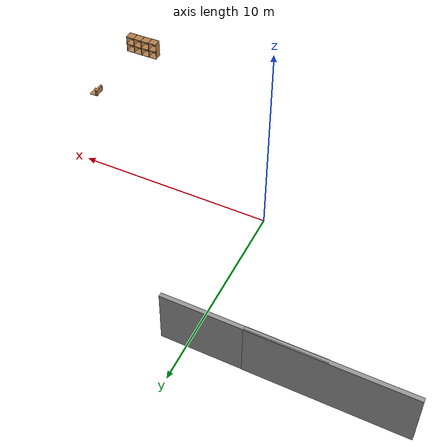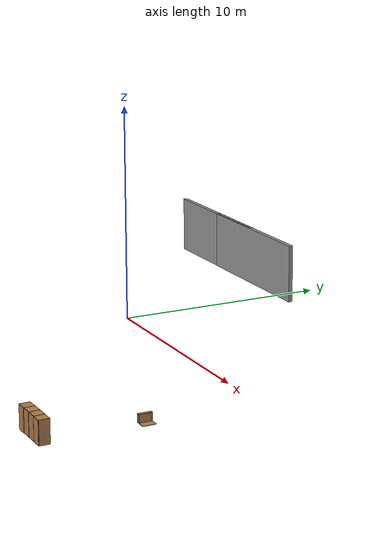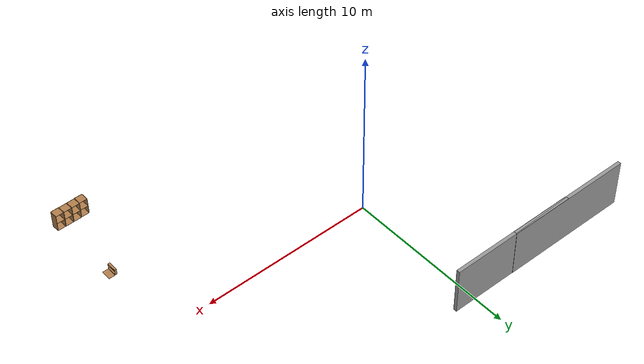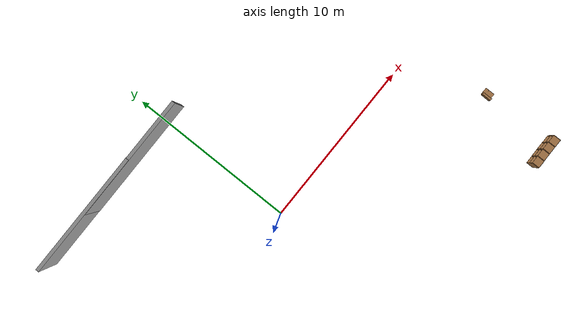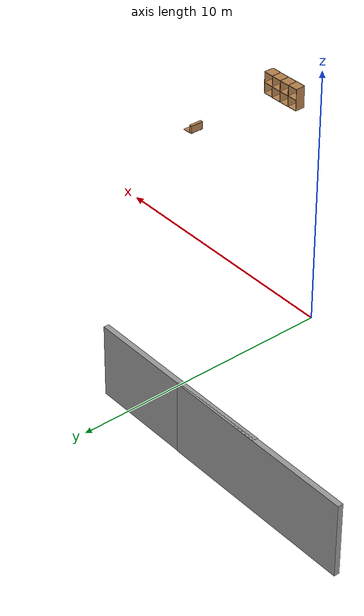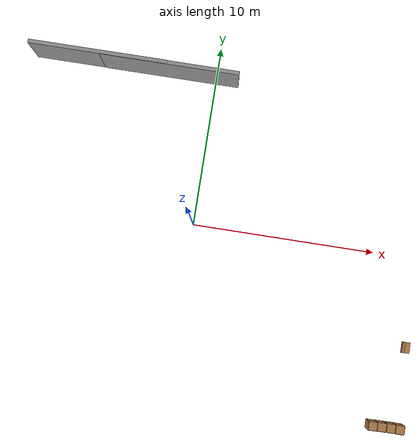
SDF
<sdf version="1.6">
 <world name="factory">
  <model name="deletion_wall">
   <static>1</static>
   <link name="sensing_link">
    <gravity>0</gravity>
    <sensor name="object_disposal_contact" type="contact">
     <update_rate>10</update_rate>
     <contact><collision>collision</collision><topic>__default_topic__</topic></contact>
    </sensor>
    <collision name="collision"><geometry><box><size>0.1 1 1</size></box></geometry></collision>
    <visual name="visual">
     <geometry><box><size>0.1 1 1</size></box></geometry>
     <cast_shadows>0</cast_shadows>
     <transparency>100</transparency>
    </visual>
   </link>
   <plugin name="object_disposal_plugin" filename="libObjectDisposalPlugin.so">
    <contact_sensor_name>object_disposal_contact</contact_sensor_name>
    <contact_side_normal>1 0 0</contact_side_normal>
    <disposal_pose>30 30 0 0 0 0</disposal_pose>
    <update_rate>5</update_rate>
   </plugin>
   <pose>0.199032 -1.08981 0 0 -0 0</pose>
  </model>
  <model name="grey_wall">
   <static>1</static>
   <link name="link">
    <pose>0 0 1.4 0 -0 0</pose>
    <collision name="collision"><geometry><box><size>7.5 0.2 2.8</size></box></geometry></collision>
    <visual name="visual">
     <cast_shadows>0</cast_shadows>
     <geometry><box><size>7.5 0.2 2.8</size></box></geometry>
     <material>
      <script>
       <uri>model://grey_wall/materials/scripts</uri>
       <uri>model://grey_wall/materials/textures</uri>
       <name>vrc/grey_wall</name>
      </script>
     </material>
    </visual>
   </link>
   <pose>-6.34942 8.1136 0 0 -0 0</pose>
  </model>
  <model name="grey_wall_clone">
   <static>1</static>
   <link name="link">
    <pose>0 0 1.4 0 -0 0</pose>
    <collision name="collision"><geometry><box><size>7.5 0.2 2.8</size></box></geometry></collision>
    <visual name="visual">
     <cast_shadows>0</cast_shadows>
     <geometry><box><size>7.5 0.2 2.8</size></box></geometry>
     <material>
      <script>
       <uri>model://grey_wall/materials/scripts</uri>
       <uri>model://grey_wall/materials/textures</uri>
       <name>vrc/grey_wall</name>
      </script>
     </material>
    </visual>
   </link>
   <pose>-2.50623 8.09985 0 0 -0 0</pose>
  </model>
  <model name="cabinet_clone">
   <static>1</static>
   <link name="cabinet_bottom_plate">
    <inertial>
     <pose>0 0 -1 0 -0 0</pose>
     <inertia><ixx>2.05</ixx><ixy>0</ixy><ixz>0</ixz><iyy>2.05</iyy><iyz>0</iyz><izz>2.05</izz></inertia>
     <mass>25</mass>
    </inertial>
    <collision name="cabinet_bottom_plate_geom">
     <pose>0 0 0.01 0 -0 0</pose>
     <geometry><box><size>0.45 0.45 0.02</size></box></geometry>
    </collision>
    <visual name="cabinet_bottom_plate_geom_visual">
     <pose>0 0 0.01 0 -0 0</pose>
     <geometry><box><size>0.45 0.45 0.02</size></box></geometry>
     <material>
      <script><uri>file://media/materials/scripts/gazebo.material</uri><name>Gazebo/Wood</name></script>
     </material>
    </visual>
    <collision name="cabinet_bottom_plate_geom_cabinet_back_plate">
     <pose>0.235 0 0.51 0 -0 0</pose>
     <geometry><box><size>0.02 0.45 1.02</size></box></geometry>
    </collision>
    <visual name="cabinet_bottom_plate_geom_cabinet_back_plate_visual">
     <pose>0.235 0 0.51 0 -0 0</pose>
     <geometry><box><size>0.02 0.45 1.02</size></box></geometry>
     <material>
      <script><uri>file://media/materials/scripts/gazebo.material</uri><name>Gazebo/Wood</name></script>
     </material>
    </visual>
    <collision name="cabinet_bottom_plate_geom_cabinet_left_plate">
     <pose>0 0.235 0.51 0 -0 0</pose>
     <geometry><box><size>0.45 0.02 1.02</size></box></geometry>
    </collision>
    <visual name="cabinet_bottom_plate_geom_cabinet_left_plate_visual">
     <pose>0 0.235 0.51 0 -0 0</pose>
     <geometry><box><size>0.45 0.02 1.02</size></box></geometry>
     <material>
      <script><uri>file://media/materials/scripts/gazebo.material</uri><name>Gazebo/Wood</name></script>
     </material>
    </visual>
    <collision name="cabinet_bottom_plate_geom_cabinet_middle_plate">
     <pose>0 0 0.51 0 -0 0</pose>
     <geometry><box><size>0.45 0.45 0.02</size></box></geometry>
    </collision>
    <visual name="cabinet_bottom_plate_geom_cabinet_middle_plate_visual">
     <pose>0 0 0.51 0 -0 0</pose>
     <geometry><box><size>0.45 0.45 0.02</size></box></geometry>
     <material>
      <script><uri>file://media/materials/scripts/gazebo.material</uri><name>Gazebo/Wood</name></script>
     </material>
    </visual>
    <collision name="cabinet_bottom_plate_geom_cabinet_right_plate">
     <pose>0 -0.235 0.51 0 -0 0</pose>
     <geometry><box><size>0.45 0.02 1.02</size></box></geometry>
    </collision>
    <visual name="cabinet_bottom_plate_geom_cabinet_right_plate_visual">
     <pose>0 -0.235 0.51 0 -0 0</pose>
     <geometry><box><size>0.45 0.02 1.02</size></box></geometry>
     <material>
      <script><uri>file://media/materials/scripts/gazebo.material</uri><name>Gazebo/Wood</name></script>
     </material>
    </visual>
    <collision name="cabinet_bottom_plate_geom_cabinet_top_plate">
     <pose>0 0 1.01 0 -0 0</pose>
     <geometry><box><size>0.45 0.45 0.02</size></box></geometry>
    </collision>
    <visual name="cabinet_bottom_plate_geom_cabinet_top_plate_visual">
     <pose>0 0 1.01 0 -0 0</pose>
     <geometry><box><size>0.45 0.45 0.02</size></box></geometry>
     <material>
      <script><uri>file://media/materials/scripts/gazebo.material</uri><name>Gazebo/Wood</name></script>
     </material>
    </visual>
   </link>
   <pose>12.5585 -9.14446 0.037072 0 0 -1.55676</pose>
  </model>
  <model name="cabinet_clone_0">
   <static>1</static>
   <link name="cabinet_bottom_plate">
    <inertial>
     <pose>0 0 -1 0 -0 0</pose>
     <inertia><ixx>2.05</ixx><ixy>0</ixy><ixz>0</ixz><iyy>2.05</iyy><iyz>0</iyz><izz>2.05</izz></inertia>
     <mass>25</mass>
    </inertial>
    <collision name="cabinet_bottom_plate_geom">
     <pose>0 0 0.01 0 -0 0</pose>
     <geometry><box><size>0.45 0.45 0.02</size></box></geometry>
    </collision>
    <visual name="cabinet_bottom_plate_geom_visual">
     <pose>0 0 0.01 0 -0 0</pose>
     <geometry><box><size>0.45 0.45 0.02</size></box></geometry>
     <material>
      <script><uri>file://media/materials/scripts/gazebo.material</uri><name>Gazebo/Wood</name></script>
     </material>
    </visual>
    <collision name="cabinet_bottom_plate_geom_cabinet_back_plate">
     <pose>0.235 0 0.51 0 -0 0</pose>
     <geometry><box><size>0.02 0.45 1.02</size></box></geometry>
    </collision>
    <visual name="cabinet_bottom_plate_geom_cabinet_back_plate_visual">
     <pose>0.235 0 0.51 0 -0 0</pose>
     <geometry><box><size>0.02 0.45 1.02</size></box></geometry>
     <material>
      <script><uri>file://media/materials/scripts/gazebo.material</uri><name>Gazebo/Wood</name></script>
     </material>
    </visual>
    <collision name="cabinet_bottom_plate_geom_cabinet_left_plate">
     <pose>0 0.235 0.51 0 -0 0</pose>
     <geometry><box><size>0.45 0.02 1.02</size></box></geometry>
    </collision>
    <visual name="cabinet_bottom_plate_geom_cabinet_left_plate_visual">
     <pose>0 0.235 0.51 0 -0 0</pose>
     <geometry><box><size>0.45 0.02 1.02</size></box></geometry>
     <material>
      <script><uri>file://media/materials/scripts/gazebo.material</uri><name>Gazebo/Wood</name></script>
     </material>
    </visual>
    <collision name="cabinet_bottom_plate_geom_cabinet_middle_plate">
     <pose>0 0 0.51 0 -0 0</pose>
     <geometry><box><size>0.45 0.45 0.02</size></box></geometry>
    </collision>
    <visual name="cabinet_bottom_plate_geom_cabinet_middle_plate_visual">
     <pose>0 0 0.51 0 -0 0</pose>
     <geometry><box><size>0.45 0.45 0.02</size></box></geometry>
     <material>
      <script><uri>file://media/materials/scripts/gazebo.material</uri><name>Gazebo/Wood</name></script>
     </material>
    </visual>
    <collision name="cabinet_bottom_plate_geom_cabinet_right_plate">
     <pose>0 -0.235 0.51 0 -0 0</pose>
     <geometry><box><size>0.45 0.02 1.02</size></box></geometry>
    </collision>
    <visual name="cabinet_bottom_plate_geom_cabinet_right_plate_visual">
     <pose>0 -0.235 0.51 0 -0 0</pose>
     <geometry><box><size>0.45 0.02 1.02</size></box></geometry>
     <material>
      <script><uri>file://media/materials/scripts/gazebo.material</uri><name>Gazebo/Wood</name></script>
     </material>
    </visual>
    <collision name="cabinet_bottom_plate_geom_cabinet_top_plate">
     <pose>0 0 1.01 0 -0 0</pose>
     <geometry><box><size>0.45 0.45 0.02</size></box></geometry>
    </collision>
    <visual name="cabinet_bottom_plate_geom_cabinet_top_plate_visual">
     <pose>0 0 1.01 0 -0 0</pose>
     <geometry><box><size>0.45 0.45 0.02</size></box></geometry>
     <material>
      <script><uri>file://media/materials/scripts/gazebo.material</uri><name>Gazebo/Wood</name></script>
     </material>
    </visual>
   </link>
   <pose>12.0748 -9.14339 0.037072 0 0 -1.55676</pose>
  </model>
  <model name="cabinet_clone_1">
   <static>1</static>
   <link name="cabinet_bottom_plate">
    <inertial>
     <pose>0 0 -1 0 -0 0</pose>
     <inertia><ixx>2.05</ixx><ixy>0</ixy><ixz>0</ixz><iyy>2.05</iyy><iyz>0</iyz><izz>2.05</izz></inertia>
     <mass>25</mass>
    </inertial>
    <collision name="cabinet_bottom_plate_geom">
     <pose>0 0 0.01 0 -0 0</pose>
     <geometry><box><size>0.45 0.45 0.02</size></box></geometry>
    </collision>
    <visual name="cabinet_bottom_plate_geom_visual">
     <pose>0 0 0.01 0 -0 0</pose>
     <geometry><box><size>0.45 0.45 0.02</size></box></geometry>
     <material>
      <script><uri>file://media/materials/scripts/gazebo.material</uri><name>Gazebo/Wood</name></script>
     </material>
    </visual>
    <collision name="cabinet_bottom_plate_geom_cabinet_back_plate">
     <pose>0.235 0 0.51 0 -0 0</pose>
     <geometry><box><size>0.02 0.45 1.02</size></box></geometry>
    </collision>
    <visual name="cabinet_bottom_plate_geom_cabinet_back_plate_visual">
     <pose>0.235 0 0.51 0 -0 0</pose>
     <geometry><box><size>0.02 0.45 1.02</size></box></geometry>
     <material>
      <script><uri>file://media/materials/scripts/gazebo.material</uri><name>Gazebo/Wood</name></script>
     </material>
    </visual>
    <collision name="cabinet_bottom_plate_geom_cabinet_left_plate">
     <pose>0 0.235 0.51 0 -0 0</pose>
     <geometry><box><size>0.45 0.02 1.02</size></box></geometry>
    </collision>
    <visual name="cabinet_bottom_plate_geom_cabinet_left_plate_visual">
     <pose>0 0.235 0.51 0 -0 0</pose>
     <geometry><box><size>0.45 0.02 1.02</size></box></geometry>
     <material>
      <script><uri>file://media/materials/scripts/gazebo.material</uri><name>Gazebo/Wood</name></script>
     </material>
    </visual>
    <collision name="cabinet_bottom_plate_geom_cabinet_middle_plate">
     <pose>0 0 0.51 0 -0 0</pose>
     <geometry><box><size>0.45 0.45 0.02</size></box></geometry>
    </collision>
    <visual name="cabinet_bottom_plate_geom_cabinet_middle_plate_visual">
     <pose>0 0 0.51 0 -0 0</pose>
     <geometry><box><size>0.45 0.45 0.02</size></box></geometry>
     <material>
      <script><uri>file://media/materials/scripts/gazebo.material</uri><name>Gazebo/Wood</name></script>
     </material>
    </visual>
    <collision name="cabinet_bottom_plate_geom_cabinet_right_plate">
     <pose>0 -0.235 0.51 0 -0 0</pose>
     <geometry><box><size>0.45 0.02 1.02</size></box></geometry>
    </collision>
    <visual name="cabinet_bottom_plate_geom_cabinet_right_plate_visual">
     <pose>0 -0.235 0.51 0 -0 0</pose>
     <geometry><box><size>0.45 0.02 1.02</size></box></geometry>
     <material>
      <script><uri>file://media/materials/scripts/gazebo.material</uri><name>Gazebo/Wood</name></script>
     </material>
    </visual>
    <collision name="cabinet_bottom_plate_geom_cabinet_top_plate">
     <pose>0 0 1.01 0 -0 0</pose>
     <geometry><box><size>0.45 0.45 0.02</size></box></geometry>
    </collision>
    <visual name="cabinet_bottom_plate_geom_cabinet_top_plate_visual">
     <pose>0 0 1.01 0 -0 0</pose>
     <geometry><box><size>0.45 0.45 0.02</size></box></geometry>
     <material>
      <script><uri>file://media/materials/scripts/gazebo.material</uri><name>Gazebo/Wood</name></script>
     </material>
    </visual>
   </link>
   <pose>11.5886 -9.15198 0.037072 0 0 -1.55676</pose>
  </model>
  <model name="cabinet_clone_2">
   <static>1</static>
   <link name="cabinet_bottom_plate">
    <inertial>
     <pose>0 0 -1 0 -0 0</pose>
     <inertia><ixx>2.05</ixx><ixy>0</ixy><ixz>0</ixz><iyy>2.05</iyy><iyz>0</iyz><izz>2.05</izz></inertia>
     <mass>25</mass>
    </inertial>
    <collision name="cabinet_bottom_plate_geom">
     <pose>0 0 0.01 0 -0 0</pose>
     <geometry><box><size>0.45 0.45 0.02</size></box></geometry>
    </collision>
    <visual name="cabinet_bottom_plate_geom_visual">
     <pose>0 0 0.01 0 -0 0</pose>
     <geometry><box><size>0.45 0.45 0.02</size></box></geometry>
     <material>
      <script><uri>file://media/materials/scripts/gazebo.material</uri><name>Gazebo/Wood</name></script>
     </material>
    </visual>
    <collision name="cabinet_bottom_plate_geom_cabinet_back_plate">
     <pose>0.235 0 0.51 0 -0 0</pose>
     <geometry><box><size>0.02 0.45 1.02</size></box></geometry>
    </collision>
    <visual name="cabinet_bottom_plate_geom_cabinet_back_plate_visual">
     <pose>0.235 0 0.51 0 -0 0</pose>
     <geometry><box><size>0.02 0.45 1.02</size></box></geometry>
     <material>
      <script><uri>file://media/materials/scripts/gazebo.material</uri><name>Gazebo/Wood</name></script>
     </material>
    </visual>
    <collision name="cabinet_bottom_plate_geom_cabinet_left_plate">
     <pose>0 0.235 0.51 0 -0 0</pose>
     <geometry><box><size>0.45 0.02 1.02</size></box></geometry>
    </collision>
    <visual name="cabinet_bottom_plate_geom_cabinet_left_plate_visual">
     <pose>0 0.235 0.51 0 -0 0</pose>
     <geometry><box><size>0.45 0.02 1.02</size></box></geometry>
     <material>
      <script><uri>file://media/materials/scripts/gazebo.material</uri><name>Gazebo/Wood</name></script>
     </material>
    </visual>
    <collision name="cabinet_bottom_plate_geom_cabinet_middle_plate">
     <pose>0 0 0.51 0 -0 0</pose>
     <geometry><box><size>0.45 0.45 0.02</size></box></geometry>
    </collision>
    <visual name="cabinet_bottom_plate_geom_cabinet_middle_plate_visual">
     <pose>0 0 0.51 0 -0 0</pose>
     <geometry><box><size>0.45 0.45 0.02</size></box></geometry>
     <material>
      <script><uri>file://media/materials/scripts/gazebo.material</uri><name>Gazebo/Wood</name></script>
     </material>
    </visual>
    <collision name="cabinet_bottom_plate_geom_cabinet_right_plate">
     <pose>0 -0.235 0.51 0 -0 0</pose>
     <geometry><box><size>0.45 0.02 1.02</size></box></geometry>
    </collision>
    <visual name="cabinet_bottom_plate_geom_cabinet_right_plate_visual">
     <pose>0 -0.235 0.51 0 -0 0</pose>
     <geometry><box><size>0.45 0.02 1.02</size></box></geometry>
     <material>
      <script><uri>file://media/materials/scripts/gazebo.material</uri><name>Gazebo/Wood</name></script>
     </material>
    </visual>
    <collision name="cabinet_bottom_plate_geom_cabinet_top_plate">
     <pose>0 0 1.01 0 -0 0</pose>
     <geometry><box><size>0.45 0.45 0.02</size></box></geometry>
    </collision>
    <visual name="cabinet_bottom_plate_geom_cabinet_top_plate_visual">
     <pose>0 0 1.01 0 -0 0</pose>
     <geometry><box><size>0.45 0.45 0.02</size></box></geometry>
     <material>
      <script><uri>file://media/materials/scripts/gazebo.material</uri><name>Gazebo/Wood</name></script>
     </material>
    </visual>
   </link>
   <pose>11.1088 -9.16946 0.037072 0 0 -1.55676</pose>
  </model>
  <model name="wooden_case_clone">
   <link name="base">
    <pose>0 0 0.024 0 -0 0</pose>
    <inertial>
     <pose>-0.022184 0 0.171592 0 -0 0</pose>
     <mass>3.96264</mass>
     <inertia>
      <ixx>0.213536</ixx>
      <ixy>0</ixy>
      <ixz>0.000779377</ixz>
      <iyy>0.0708943</iyy>
      <iyz>0</iyz>
      <izz>0.154604</izz>
     </inertia>
    </inertial>
    <collision name="collision_back">
     <pose>-0.053975 0 0.1778 0 -0 0</pose>
     <geometry><box><size>0.01905 0.5461 0.3175</size></box></geometry>
     <surface>
      <contact>
       <poissons_ratio>0.347</poissons_ratio>
       <elastic_modulus>8.8e+09</elastic_modulus>
       <ode><kp>100000</kp><kd>100</kd><max_vel>100</max_vel><min_depth>0.001</min_depth></ode>
      </contact>
      <friction>
       <torsional>
        <coefficient>1</coefficient>
        <use_patch_radius>0</use_patch_radius>
        <surface_radius>0.01</surface_radius>
       </torsional>
      </friction>
     </surface>
    </collision>
    <visual name="visual_back">
     <pose>-0.053975 0 0.1778 0 -0 0</pose>
     <geometry><box><size>0.01905 0.5461 0.3175</size></box></geometry>
     <material>
      <script><uri>file://media/materials/scripts/gazebo.material</uri><name>Gazebo/Wood</name></script>
     </material>
    </visual>
    <collision name="collision_bottom">
     <pose>0 0 0.009525 0 -0 0</pose>
     <geometry><box><size>0.127 0.5842 0.01905</size></box></geometry>
     <surface>
      <contact>
       <poissons_ratio>0.347</poissons_ratio>
       <elastic_modulus>8.8e+09</elastic_modulus>
       <ode><kp>100000</kp><kd>100</kd><max_vel>100</max_vel><min_depth>0.001</min_depth></ode>
      </contact>
      <friction>
       <torsional>
        <coefficient>1</coefficient>
        <use_patch_radius>0</use_patch_radius>
        <surface_radius>0.01</surface_radius>
       </torsional>
      </friction>
     </surface>
    </collision>
    <visual name="visual_bottom">
     <pose>0 0 0.009525 0 -0 0</pose>
     <geometry><box><size>0.127 0.5842 0.01905</size></box></geometry>
     <material>
      <script><uri>file://media/materials/scripts/gazebo.material</uri><name>Gazebo/Wood</name></script>
     </material>
    </visual>
    <collision name="collision_top">
     <pose>0 0 0.346075 0 -0 0</pose>
     <geometry><box><size>0.127 0.5842 0.01905</size></box></geometry>
     <surface>
      <contact>
       <poissons_ratio>0.347</poissons_ratio>
       <elastic_modulus>8.8e+09</elastic_modulus>
       <ode><kp>100000</kp><kd>100</kd><max_vel>100</max_vel><min_depth>0.001</min_depth></ode>
      </contact>
      <friction>
       <torsional>
        <coefficient>1</coefficient>
        <use_patch_radius>0</use_patch_radius>
        <surface_radius>0.01</surface_radius>
       </torsional>
      </friction>
     </surface>
    </collision>
    <visual name="visual_top">
     <pose>0 0 0.346075 0 -0 0</pose>
     <geometry><box><size>0.127 0.5842 0.01905</size></box></geometry>
     <material>
      <script><uri>file://media/materials/scripts/gazebo.material</uri><name>Gazebo/Wood</name></script>
     </material>
    </visual>
    <collision name="collision_left">
     <pose>0 -0.282575 0.1778 0 -0 0</pose>
     <geometry><box><size>0.127 0.01905 0.3175</size></box></geometry>
     <surface>
      <contact>
       <poissons_ratio>0.347</poissons_ratio>
       <elastic_modulus>8.8e+09</elastic_modulus>
       <ode><kp>100000</kp><kd>100</kd><max_vel>100</max_vel><min_depth>0.001</min_depth></ode>
      </contact>
      <friction>
       <torsional>
        <coefficient>1</coefficient>
        <use_patch_radius>0</use_patch_radius>
        <surface_radius>0.01</surface_radius>
       </torsional>
      </friction>
     </surface>
    </collision>
    <visual name="visual_left">
     <pose>0 -0.282575 0.1778 0 -0 0</pose>
     <geometry><box><size>0.127 0.01905 0.3175</size></box></geometry>
     <material>
      <script><uri>file://media/materials/scripts/gazebo.material</uri><name>Gazebo/Wood</name></script>
     </material>
    </visual>
    <collision name="collision_right">
     <pose>0 0.282575 0.1778 0 -0 0</pose>
     <geometry><box><size>0.127 0.01905 0.3175</size></box></geometry>
     <surface>
      <contact>
       <poissons_ratio>0.347</poissons_ratio>
       <elastic_modulus>8.8e+09</elastic_modulus>
       <ode><kp>100000</kp><kd>100</kd><max_vel>100</max_vel><min_depth>0.001</min_depth></ode>
      </contact>
      <friction>
       <torsional>
        <coefficient>1</coefficient>
        <use_patch_radius>0</use_patch_radius>
        <surface_radius>0.01</surface_radius>
       </torsional>
      </friction>
     </surface>
    </collision>
    <visual name="visual_right">
     <pose>0 0.282575 0.1778 0 -0 0</pose>
     <geometry><box><size>0.127 0.01905 0.3175</size></box></geometry>
     <material>
      <script><uri>file://media/materials/scripts/gazebo.material</uri><name>Gazebo/Wood</name></script>
     </material>
    </visual>
    <collision name="collision_block_left">
     <pose>0.0095 -0.2151 -0.012 0 -0 0</pose>
     <geometry><box><size>0.108 0.05 0.024</size></box></geometry>
     <surface>
      <contact>
       <poissons_ratio>0.347</poissons_ratio>
       <elastic_modulus>8.8e+09</elastic_modulus>
       <ode><kp>100000</kp><kd>100</kd><max_vel>100</max_vel><min_depth>0.001</min_depth></ode>
      </contact>
      <friction>
       <torsional>
        <coefficient>1</coefficient>
        <use_patch_radius>0</use_patch_radius>
        <surface_radius>0.01</surface_radius>
       </torsional>
      </friction>
     </surface>
    </collision>
    <visual name="visual_block_left">
     <pose>0.0095 -0.2151 -0.012 0 -0 0</pose>
     <geometry><box><size>0.108 0.05 0.024</size></box></geometry>
     <material>
      <script><uri>file://media/materials/scripts/gazebo.material</uri><name>Gazebo/Wood</name></script>
     </material>
    </visual>
    <collision name="collision_block_right">
     <pose>0.0095 0.2151 -0.012 0 -0 0</pose>
     <geometry><box><size>0.108 0.05 0.024</size></box></geometry>
     <surface>
      <contact>
       <poissons_ratio>0.347</poissons_ratio>
       <elastic_modulus>8.8e+09</elastic_modulus>
       <ode><kp>100000</kp><kd>100</kd><max_vel>100</max_vel><min_depth>0.001</min_depth></ode>
      </contact>
      <friction>
       <torsional>
        <coefficient>1</coefficient>
        <use_patch_radius>0</use_patch_radius>
        <surface_radius>0.01</surface_radius>
       </torsional>
      </friction>
     </surface>
    </collision>
    <visual name="visual_block_right">
     <pose>0.0095 0.2151 -0.012 0 -0 0</pose>
     <geometry><box><size>0.108 0.05 0.024</size></box></geometry>
     <material>
      <script><uri>file://media/materials/scripts/gazebo.material</uri><name>Gazebo/Wood</name></script>
     </material>
    </visual>
   </link>
   <link name="lid">
    <pose>0.243775 0 0.009525 0 -0 0</pose>
    <inertial>
     <mass>1.97874</mass>
     <inertia>
      <ixx>0.0563367</ixx>
      <ixy>0</ixy>
      <ixz>0</ixz>
      <iyy>0.020911</iyy>
      <iyz>0</iyz>
      <izz>0.0771281</izz>
     </inertia>
    </inertial>
    <collision name="collision">
     <geometry><box><size>0.3556 0.5842 0.01905</size></box></geometry>
     <surface>
      <contact>
       <poissons_ratio>0.347</poissons_ratio>
       <elastic_modulus>8.8e+09</elastic_modulus>
       <ode><kp>100000</kp><kd>100</kd><max_vel>100</max_vel><min_depth>0.001</min_depth></ode>
      </contact>
      <friction>
       <torsional>
        <coefficient>1</coefficient>
        <use_patch_radius>0</use_patch_radius>
        <surface_radius>0.01</surface_radius>
       </torsional>
      </friction>
     </surface>
    </collision>
    <visual name="visual">
     <geometry><box><size>0.3556 0.5842 0.01905</size></box></geometry>
     <material>
      <script><uri>file://media/materials/scripts/gazebo.material</uri><name>Gazebo/Wood</name></script>
     </material>
    </visual>
    <visual name="tee_nut_1">
     <pose>0.122 -0.216 0 0 -0 0</pose>
     <geometry><cylinder><radius>0.00635</radius><length>0.0192405</length></cylinder></geometry>
     <material>
      <script><uri>file://media/materials/scripts/gazebo.material</uri><name>Gazebo/Grey</name></script>
     </material>
    </visual>
    <visual name="tee_nut_2">
     <pose>0.122 -0.088 0 0 -0 0</pose>
     <geometry><cylinder><radius>0.00635</radius><length>0.0192405</length></cylinder></geometry>
     <material>
      <script><uri>file://media/materials/scripts/gazebo.material</uri><name>Gazebo/Grey</name></script>
     </material>
    </visual>
    <visual name="tee_nut_3">
     <pose>0.122 0.088 0 0 -0 0</pose>
     <geometry><cylinder><radius>0.00635</radius><length>0.0192405</length></cylinder></geometry>
     <material>
      <script><uri>file://media/materials/scripts/gazebo.material</uri><name>Gazebo/Grey</name></script>
     </material>
    </visual>
    <visual name="tee_nut_4">
     <pose>0.122 0.216 0 0 -0 0</pose>
     <geometry><cylinder><radius>0.00635</radius><length>0.0192405</length></cylinder></geometry>
     <material>
      <script><uri>file://media/materials/scripts/gazebo.material</uri><name>Gazebo/Grey</name></script>
     </material>
    </visual>
   </link>
   <joint name="lid_hinge" type="revolute">
    <pose>-0.1778 0 0.01905 0 -0 0</pose>
    <parent>base</parent>
    <child>lid</child>
    <axis>
     <xyz>0 1 0</xyz>
     <limit><upper>0.523599</upper><lower>-1.5708</lower></limit>
     <use_parent_model_frame>0</use_parent_model_frame>
     <dynamics><spring_reference>0</spring_reference><spring_stiffness>0</spring_stiffness></dynamics>
    </axis>
   </joint>
   <pose>12.2927 -4.84304 -0.001057 0 -0.000431 0</pose>
  </model>
 </world>
</sdf>
